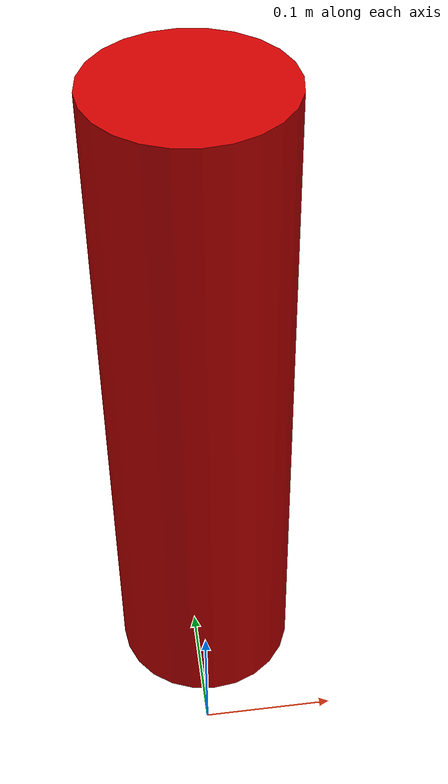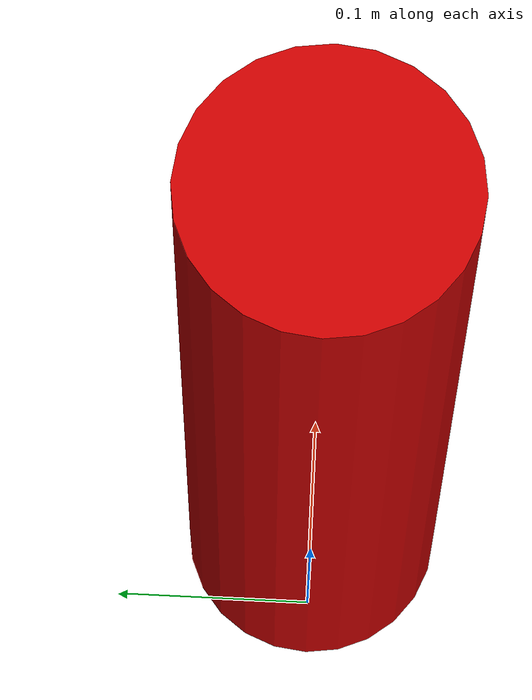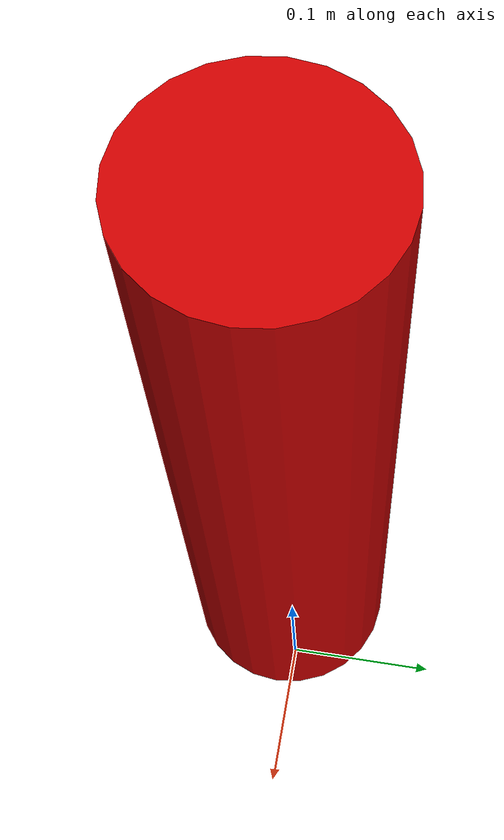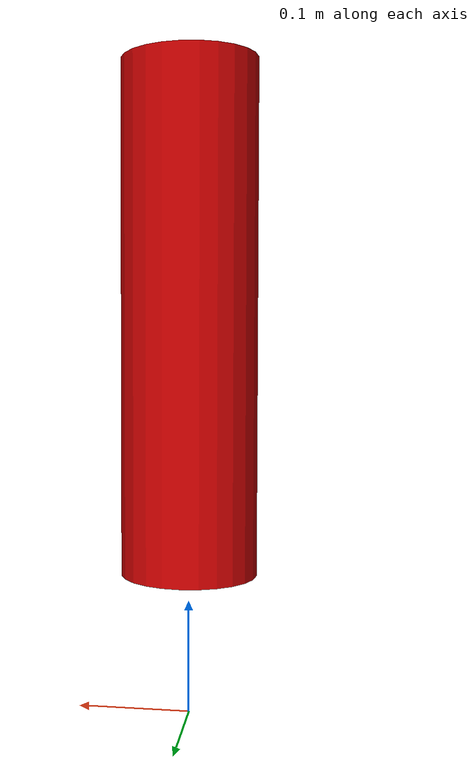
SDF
<!-- models/fire_extinguisher/model.sdf -->
<sdf version="1.6">
  <model name="fire_extinguisher"><static>true</static>
    <link name="body"><pose>0 0 0.35 0 0 0</pose>
      <collision name="col">
        <geometry><cylinder><radius>0.06</radius><length>0.45</length></cylinder></geometry>
      </collision>
      <visual name="vis">
        <geometry><cylinder><radius>0.06</radius><length>0.45</length></cylinder></geometry>
        <material><ambient>0.8 0 0 1</ambient><diffuse>0.8 0 0 1</diffuse></material>
      </visual>
    </link>
  </model>
</sdf>
